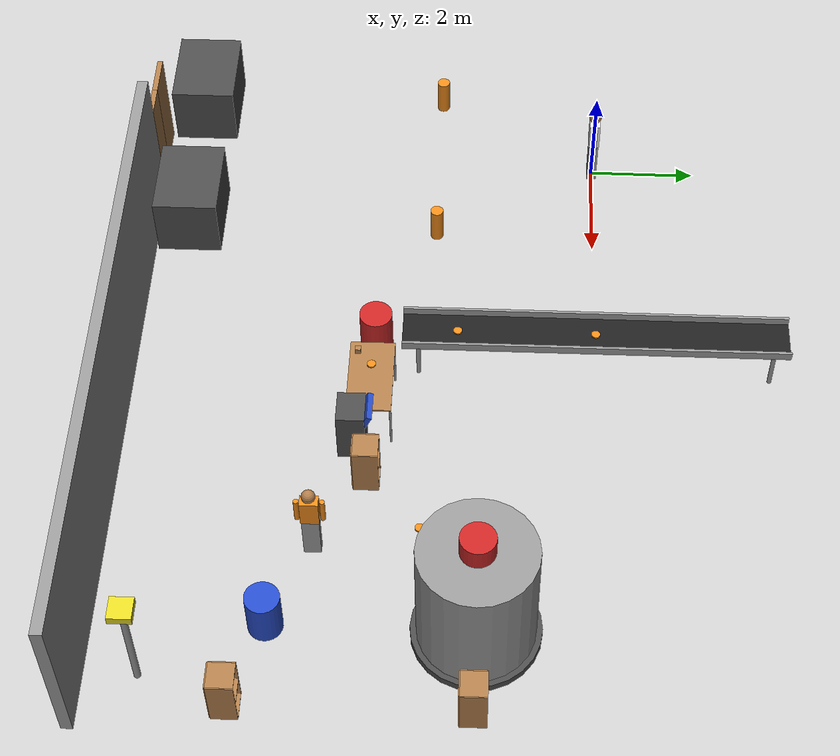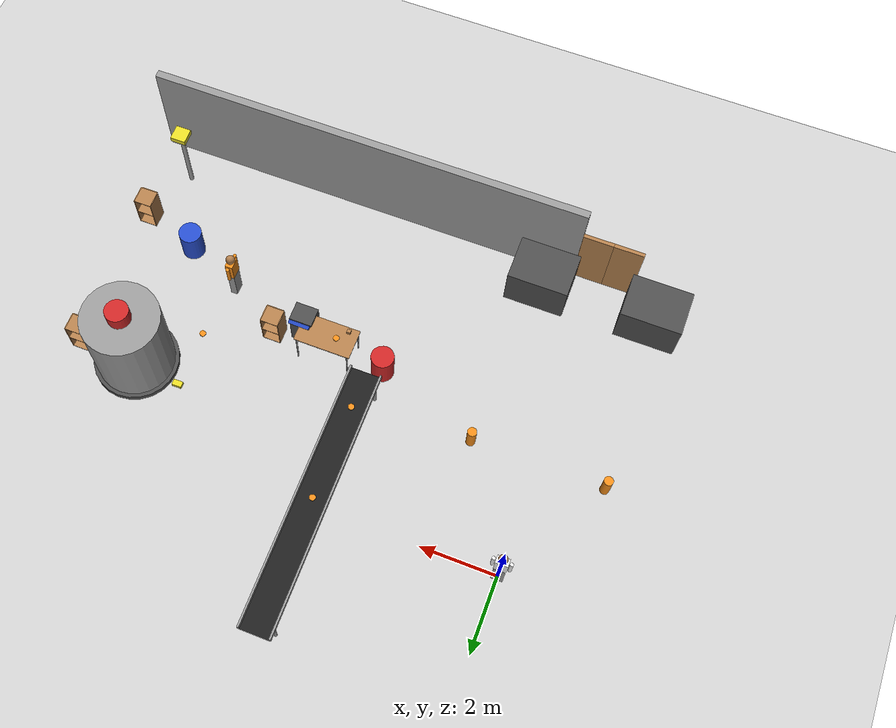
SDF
<sdf version="1.7">
 <world name="default">
  <model name="cabinet">
   <static>1</static>
   <link name="cabinet_bottom_plate">
    <inertial>
     <pose>0 0 -1 0 -0 0</pose>
     <inertia><ixx>2.05</ixx><ixy>0</ixy><ixz>0</ixz><iyy>2.05</iyy><iyz>0</iyz><izz>2.05</izz></inertia>
     <mass>25</mass>
    </inertial>
    <collision name="cabinet_bottom_plate_geom">
     <pose>0 0 0.01 0 -0 0</pose>
     <geometry><box><size>0.45 0.45 0.02</size></box></geometry>
    </collision>
    <visual name="cabinet_bottom_plate_geom_visual">
     <pose>0 0 0.01 0 -0 0</pose>
     <geometry><box><size>0.45 0.45 0.02</size></box></geometry>
     <material>
      <script><uri>file://media/materials/scripts/gazebo.material</uri><name>Gazebo/Wood</name></script>
     </material>
    </visual>
    <collision name="cabinet_bottom_plate_geom_cabinet_back_plate">
     <pose>0.235 0 0.51 0 -0 0</pose>
     <geometry><box><size>0.02 0.45 1.02</size></box></geometry>
    </collision>
    <visual name="cabinet_bottom_plate_geom_cabinet_back_plate_visual">
     <pose>0.235 0 0.51 0 -0 0</pose>
     <geometry><box><size>0.02 0.45 1.02</size></box></geometry>
     <material>
      <script><uri>file://media/materials/scripts/gazebo.material</uri><name>Gazebo/Wood</name></script>
     </material>
    </visual>
    <collision name="cabinet_bottom_plate_geom_cabinet_left_plate">
     <pose>0 0.235 0.51 0 -0 0</pose>
     <geometry><box><size>0.45 0.02 1.02</size></box></geometry>
    </collision>
    <visual name="cabinet_bottom_plate_geom_cabinet_left_plate_visual">
     <pose>0 0.235 0.51 0 -0 0</pose>
     <geometry><box><size>0.45 0.02 1.02</size></box></geometry>
     <material>
      <script><uri>file://media/materials/scripts/gazebo.material</uri><name>Gazebo/Wood</name></script>
     </material>
    </visual>
    <collision name="cabinet_bottom_plate_geom_cabinet_middle_plate">
     <pose>0 0 0.51 0 -0 0</pose>
     <geometry><box><size>0.45 0.45 0.02</size></box></geometry>
    </collision>
    <visual name="cabinet_bottom_plate_geom_cabinet_middle_plate_visual">
     <pose>0 0 0.51 0 -0 0</pose>
     <geometry><box><size>0.45 0.45 0.02</size></box></geometry>
     <material>
      <script><uri>file://media/materials/scripts/gazebo.material</uri><name>Gazebo/Wood</name></script>
     </material>
    </visual>
    <collision name="cabinet_bottom_plate_geom_cabinet_right_plate">
     <pose>0 -0.235 0.51 0 -0 0</pose>
     <geometry><box><size>0.45 0.02 1.02</size></box></geometry>
    </collision>
    <visual name="cabinet_bottom_plate_geom_cabinet_right_plate_visual">
     <pose>0 -0.235 0.51 0 -0 0</pose>
     <geometry><box><size>0.45 0.02 1.02</size></box></geometry>
     <material>
      <script><uri>file://media/materials/scripts/gazebo.material</uri><name>Gazebo/Wood</name></script>
     </material>
    </visual>
    <collision name="cabinet_bottom_plate_geom_cabinet_top_plate">
     <pose>0 0 1.01 0 -0 0</pose>
     <geometry><box><size>0.45 0.45 0.02</size></box></geometry>
    </collision>
    <visual name="cabinet_bottom_plate_geom_cabinet_top_plate_visual">
     <pose>0 0 1.01 0 -0 0</pose>
     <geometry><box><size>0.45 0.45 0.02</size></box></geometry>
     <material>
      <script><uri>file://media/materials/scripts/gazebo.material</uri><name>Gazebo/Wood</name></script>
     </material>
    </visual>
   </link>
   <pose>12 -6 0 0 -0 -1.5708</pose>
  </model>
  <model name="cabinet_0">
   <static>1</static>
   <link name="cabinet_bottom_plate">
    <inertial>
     <pose>0 0 -1 0 -0 0</pose>
     <inertia><ixx>2.05</ixx><ixy>0</ixy><ixz>0</ixz><iyy>2.05</iyy><iyz>0</iyz><izz>2.05</izz></inertia>
     <mass>25</mass>
    </inertial>
    <collision name="cabinet_bottom_plate_geom">
     <pose>0 0 0.01 0 -0 0</pose>
     <geometry><box><size>0.45 0.45 0.02</size></box></geometry>
    </collision>
    <visual name="cabinet_bottom_plate_geom_visual">
     <pose>0 0 0.01 0 -0 0</pose>
     <geometry><box><size>0.45 0.45 0.02</size></box></geometry>
     <material>
      <script><uri>file://media/materials/scripts/gazebo.material</uri><name>Gazebo/Wood</name></script>
     </material>
    </visual>
    <collision name="cabinet_bottom_plate_geom_cabinet_back_plate">
     <pose>0.235 0 0.51 0 -0 0</pose>
     <geometry><box><size>0.02 0.45 1.02</size></box></geometry>
    </collision>
    <visual name="cabinet_bottom_plate_geom_cabinet_back_plate_visual">
     <pose>0.235 0 0.51 0 -0 0</pose>
     <geometry><box><size>0.02 0.45 1.02</size></box></geometry>
     <material>
      <script><uri>file://media/materials/scripts/gazebo.material</uri><name>Gazebo/Wood</name></script>
     </material>
    </visual>
    <collision name="cabinet_bottom_plate_geom_cabinet_left_plate">
     <pose>0 0.235 0.51 0 -0 0</pose>
     <geometry><box><size>0.45 0.02 1.02</size></box></geometry>
    </collision>
    <visual name="cabinet_bottom_plate_geom_cabinet_left_plate_visual">
     <pose>0 0.235 0.51 0 -0 0</pose>
     <geometry><box><size>0.45 0.02 1.02</size></box></geometry>
     <material>
      <script><uri>file://media/materials/scripts/gazebo.material</uri><name>Gazebo/Wood</name></script>
     </material>
    </visual>
    <collision name="cabinet_bottom_plate_geom_cabinet_middle_plate">
     <pose>0 0 0.51 0 -0 0</pose>
     <geometry><box><size>0.45 0.45 0.02</size></box></geometry>
    </collision>
    <visual name="cabinet_bottom_plate_geom_cabinet_middle_plate_visual">
     <pose>0 0 0.51 0 -0 0</pose>
     <geometry><box><size>0.45 0.45 0.02</size></box></geometry>
     <material>
      <script><uri>file://media/materials/scripts/gazebo.material</uri><name>Gazebo/Wood</name></script>
     </material>
    </visual>
    <collision name="cabinet_bottom_plate_geom_cabinet_right_plate">
     <pose>0 -0.235 0.51 0 -0 0</pose>
     <geometry><box><size>0.45 0.02 1.02</size></box></geometry>
    </collision>
    <visual name="cabinet_bottom_plate_geom_cabinet_right_plate_visual">
     <pose>0 -0.235 0.51 0 -0 0</pose>
     <geometry><box><size>0.45 0.02 1.02</size></box></geometry>
     <material>
      <script><uri>file://media/materials/scripts/gazebo.material</uri><name>Gazebo/Wood</name></script>
     </material>
    </visual>
    <collision name="cabinet_bottom_plate_geom_cabinet_top_plate">
     <pose>0 0 1.01 0 -0 0</pose>
     <geometry><box><size>0.45 0.45 0.02</size></box></geometry>
    </collision>
    <visual name="cabinet_bottom_plate_geom_cabinet_top_plate_visual">
     <pose>0 0 1.01 0 -0 0</pose>
     <geometry><box><size>0.45 0.45 0.02</size></box></geometry>
     <material>
      <script><uri>file://media/materials/scripts/gazebo.material</uri><name>Gazebo/Wood</name></script>
     </material>
    </visual>
   </link>
   <pose>12 -2 0 0 -0 -1.5708</pose>
  </model>
  <model name="ground_plane">
   <static>1</static>
   <link name="link">
    <collision name="collision">
     <geometry><plane><normal>0 0 1</normal><size>100 100</size></plane></geometry>
     <surface><friction><ode><mu>100</mu><mu2>50</mu2></ode></friction></surface>
    </collision>
    <visual name="visual">
     <cast_shadows>0</cast_shadows>
     <geometry><plane><normal>0 0 1</normal><size>100 100</size></plane></geometry>
     <material>
      <script><uri>file://media/materials/scripts/gazebo.material</uri><name>Gazebo/Grey</name></script>
     </material>
    </visual>
   </link>
  </model>
  <model name="table">
   <static>1</static>
   <link name="link">
    <collision name="surface">
     <pose>0 0 1 0 -0 0</pose>
     <geometry><box><size>1.5 0.8 0.03</size></box></geometry>
     <surface><friction><ode><mu>0.6</mu><mu2>0.6</mu2></ode></friction></surface>
    </collision>
    <visual name="visual1">
     <pose>0 0 1 0 -0 0</pose>
     <geometry><box><size>1.5 0.8 0.03</size></box></geometry>
     <material>
      <script><uri>file://media/materials/scripts/gazebo.material</uri><name>Gazebo/Wood</name></script>
     </material>
    </visual>
    <collision name="front_left_leg">
     <pose>0.68 0.38 0.5 0 -0 0</pose>
     <geometry><cylinder><radius>0.02</radius><length>1</length></cylinder></geometry>
    </collision>
    <visual name="front_left_leg_visual2">
     <pose>0.68 0.38 0.5 0 -0 0</pose>
     <geometry><cylinder><radius>0.02</radius><length>1</length></cylinder></geometry>
     <material>
      <script><uri>file://media/materials/scripts/gazebo.material</uri><name>Gazebo/Grey</name></script>
     </material>
    </visual>
    <collision name="front_right_leg">
     <pose>0.68 -0.38 0.5 0 -0 0</pose>
     <geometry><cylinder><radius>0.02</radius><length>1</length></cylinder></geometry>
    </collision>
    <visual name="front_right_leg_visual2">
     <pose>0.68 -0.38 0.5 0 -0 0</pose>
     <geometry><cylinder><radius>0.02</radius><length>1</length></cylinder></geometry>
     <material>
      <script><uri>file://media/materials/scripts/gazebo.material</uri><name>Gazebo/Grey</name></script>
     </material>
    </visual>
    <collision name="back_right_leg">
     <pose>-0.68 -0.38 0.5 0 -0 0</pose>
     <geometry><cylinder><radius>0.02</radius><length>1</length></cylinder></geometry>
    </collision>
    <visual name="back_right_leg_visual2">
     <pose>-0.68 -0.38 0.5 0 -0 0</pose>
     <geometry><cylinder><radius>0.02</radius><length>1</length></cylinder></geometry>
     <material>
      <script><uri>file://media/materials/scripts/gazebo.material</uri><name>Gazebo/Grey</name></script>
     </material>
    </visual>
    <collision name="back_left_leg">
     <pose>-0.68 0.38 0.5 0 -0 0</pose>
     <geometry><cylinder><radius>0.02</radius><length>1</length></cylinder></geometry>
    </collision>
    <visual name="back_left_leg_visual2">
     <pose>-0.68 0.38 0.5 0 -0 0</pose>
     <geometry><cylinder><radius>0.02</radius><length>1</length></cylinder></geometry>
     <material>
      <script><uri>file://media/materials/scripts/gazebo.material</uri><name>Gazebo/Grey</name></script>
     </material>
    </visual>
   </link>
   <pose>6 -4 0 0 -0 0</pose>
  </model>
  <model name="door_08x2m">
   <link name="link">
    <visual name="visual">
     <geometry><box><size>0.1 0.8 2</size></box></geometry>
     <material>
      <script><uri>file://media/materials/scripts/gazebo.material</uri><name>Gazebo/Wood</name></script>
     </material>
    </visual>
   </link>
   <static>1</static>
   <pose>-0.4 -8.5 1 0 -0 1.5708</pose>
  </model>
  <model name="door_08x2m_clone">
   <link name="link">
    <visual name="visual">
     <geometry><box><size>0.1 0.8 2</size></box></geometry>
     <material>
      <script><uri>file://media/materials/scripts/gazebo.material</uri><name>Gazebo/Wood</name></script>
     </material>
    </visual>
   </link>
   <static>1</static>
   <pose>0.4 -8.5 1 0 -0 1.5708</pose>
  </model>
  <model name="wall_south_east">
   <static>1</static>
   <link name="link">
    <collision name="box_collision"><geometry><box><size>11.7 0.2 3</size></box></geometry></collision>
    <visual name="box_visual">
     <geometry><box><size>11.7 0.2 3</size></box></geometry>
     <material>
      <script><uri>file://media/materials/scripts/gazebo.material</uri><name>Gazebo/Grey</name></script>
     </material>
    </visual>
   </link>
   <pose>6.65 -8.5 1.5 0 -0 0</pose>
  </model>
  <model name="wood_cube_ws1">
   <link name="link">
    <pose>0 0 0.05 0 -0 0</pose>
    <inertial>
     <mass>0.5167</mass>
     <inertia>
      <ixx>0.000861167</ixx>
      <ixy>0</ixy>
      <ixz>0</ixz>
      <iyy>0.000861167</iyy>
      <iyz>0</iyz>
      <izz>0.000861167</izz>
     </inertia>
    </inertial>
    <collision name="collision">
     <geometry><box><size>0.1 0.1 0.1</size></box></geometry>
     <surface>
      <contact>
       <poissons_ratio>0.347</poissons_ratio>
       <elastic_modulus>8.8e+09</elastic_modulus>
       <ode><kp>100000</kp><kd>100</kd><max_vel>100</max_vel><min_depth>0.001</min_depth></ode>
      </contact>
      <friction>
       <torsional>
        <coefficient>1</coefficient>
        <use_patch_radius>0</use_patch_radius>
        <surface_radius>0.01</surface_radius>
       </torsional>
      </friction>
     </surface>
    </collision>
    <visual name="visual">
     <geometry><box><size>0.1 0.1 0.1</size></box></geometry>
     <material>
      <script><uri>file://media/materials/scripts/gazebo.material</uri><name>Gazebo/Wood</name></script>
     </material>
    </visual>
   </link>
   <pose>5.5 -4.25 1.065 0 -0 0</pose>
  </model>
  <model name="cabinet_ws1">
   <static>1</static>
   <link name="cabinet_bottom_plate">
    <inertial>
     <pose>0 0 -1 0 -0 0</pose>
     <inertia><ixx>2.05</ixx><ixy>0</ixy><ixz>0</ixz><iyy>2.05</iyy><iyz>0</iyz><izz>2.05</izz></inertia>
     <mass>25</mass>
    </inertial>
    <collision name="cabinet_bottom_plate_geom">
     <pose>0 0 0.01 0 -0 0</pose>
     <geometry><box><size>0.45 0.45 0.02</size></box></geometry>
    </collision>
    <visual name="cabinet_bottom_plate_geom_visual">
     <pose>0 0 0.01 0 -0 0</pose>
     <geometry><box><size>0.45 0.45 0.02</size></box></geometry>
     <material>
      <script><uri>file://media/materials/scripts/gazebo.material</uri><name>Gazebo/Wood</name></script>
     </material>
    </visual>
    <collision name="cabinet_bottom_plate_geom_cabinet_back_plate">
     <pose>0.235 0 0.51 0 -0 0</pose>
     <geometry><box><size>0.02 0.45 1.02</size></box></geometry>
    </collision>
    <visual name="cabinet_bottom_plate_geom_cabinet_back_plate_visual">
     <pose>0.235 0 0.51 0 -0 0</pose>
     <geometry><box><size>0.02 0.45 1.02</size></box></geometry>
     <material>
      <script><uri>file://media/materials/scripts/gazebo.material</uri><name>Gazebo/Wood</name></script>
     </material>
    </visual>
    <collision name="cabinet_bottom_plate_geom_cabinet_left_plate">
     <pose>0 0.235 0.51 0 -0 0</pose>
     <geometry><box><size>0.45 0.02 1.02</size></box></geometry>
    </collision>
    <visual name="cabinet_bottom_plate_geom_cabinet_left_plate_visual">
     <pose>0 0.235 0.51 0 -0 0</pose>
     <geometry><box><size>0.45 0.02 1.02</size></box></geometry>
     <material>
      <script><uri>file://media/materials/scripts/gazebo.material</uri><name>Gazebo/Wood</name></script>
     </material>
    </visual>
    <collision name="cabinet_bottom_plate_geom_cabinet_middle_plate">
     <pose>0 0 0.51 0 -0 0</pose>
     <geometry><box><size>0.45 0.45 0.02</size></box></geometry>
    </collision>
    <visual name="cabinet_bottom_plate_geom_cabinet_middle_plate_visual">
     <pose>0 0 0.51 0 -0 0</pose>
     <geometry><box><size>0.45 0.45 0.02</size></box></geometry>
     <material>
      <script><uri>file://media/materials/scripts/gazebo.material</uri><name>Gazebo/Wood</name></script>
     </material>
    </visual>
    <collision name="cabinet_bottom_plate_geom_cabinet_right_plate">
     <pose>0 -0.235 0.51 0 -0 0</pose>
     <geometry><box><size>0.45 0.02 1.02</size></box></geometry>
    </collision>
    <visual name="cabinet_bottom_plate_geom_cabinet_right_plate_visual">
     <pose>0 -0.235 0.51 0 -0 0</pose>
     <geometry><box><size>0.45 0.02 1.02</size></box></geometry>
     <material>
      <script><uri>file://media/materials/scripts/gazebo.material</uri><name>Gazebo/Wood</name></script>
     </material>
    </visual>
    <collision name="cabinet_bottom_plate_geom_cabinet_top_plate">
     <pose>0 0 1.01 0 -0 0</pose>
     <geometry><box><size>0.45 0.45 0.02</size></box></geometry>
    </collision>
    <visual name="cabinet_bottom_plate_geom_cabinet_top_plate_visual">
     <pose>0 0 1.01 0 -0 0</pose>
     <geometry><box><size>0.45 0.45 0.02</size></box></geometry>
     <material>
      <script><uri>file://media/materials/scripts/gazebo.material</uri><name>Gazebo/Wood</name></script>
     </material>
    </visual>
   </link>
   <pose>7.5 -4 0 0 -0 -1.5708</pose>
  </model>
  <model name="barrel_4">
   <static>1</static>
   <link name="link">
    <collision name="cyl_collision">
     <geometry><cylinder><radius>0.3</radius><length>0.9</length></cylinder></geometry>
    </collision>
    <visual name="cyl_visual">
     <geometry><cylinder><radius>0.3</radius><length>0.9</length></cylinder></geometry>
     <material>
      <script><uri>file://media/materials/scripts/gazebo.material</uri><name>Gazebo/Red</name></script>
     </material>
    </visual>
   </link>
   <pose>4.5 -4 0.45 0 -0 0</pose>
  </model>
  <model name="barrel_6">
   <static>1</static>
   <link name="link">
    <collision name="cyl_collision">
     <geometry><cylinder><radius>0.3</radius><length>0.9</length></cylinder></geometry>
    </collision>
    <visual name="cyl_visual">
     <geometry><cylinder><radius>0.3</radius><length>0.9</length></cylinder></geometry>
     <material>
      <script><uri>file://media/materials/scripts/gazebo.material</uri><name>Gazebo/Blue</name></script>
     </material>
    </visual>
   </link>
   <pose>10.5 -5.5 0.45 0 -0 0</pose>
  </model>
  <model name="pylon_0">
   <static>1</static>
   <link name="link">
    <collision name="cyl_collision">
     <geometry><cylinder><radius>0.12</radius><length>0.7</length></cylinder></geometry>
    </collision>
    <visual name="cyl_visual">
     <geometry><cylinder><radius>0.12</radius><length>0.7</length></cylinder></geometry>
     <material>
      <script><uri>file://media/materials/scripts/gazebo.material</uri><name>Gazebo/Orange</name></script>
     </material>
    </visual>
   </link>
   <pose>-1.75 -8 0.35 0 -0 0</pose>
  </model>
  <model name="pylon_1">
   <static>1</static>
   <link name="link">
    <collision name="cyl_collision">
     <geometry><cylinder><radius>0.12</radius><length>0.7</length></cylinder></geometry>
    </collision>
    <visual name="cyl_visual">
     <geometry><cylinder><radius>0.12</radius><length>0.7</length></cylinder></geometry>
     <material>
      <script><uri>file://media/materials/scripts/gazebo.material</uri><name>Gazebo/Orange</name></script>
     </material>
    </visual>
   </link>
   <pose>-1.75 -3 0.35 0 -0 0</pose>
  </model>
  <model name="pylon_3">
   <static>1</static>
   <link name="link">
    <collision name="cyl_collision">
     <geometry><cylinder><radius>0.12</radius><length>0.7</length></cylinder></geometry>
    </collision>
    <visual name="cyl_visual">
     <geometry><cylinder><radius>0.12</radius><length>0.7</length></cylinder></geometry>
     <material>
      <script><uri>file://media/materials/scripts/gazebo.material</uri><name>Gazebo/Orange</name></script>
     </material>
    </visual>
   </link>
   <pose>1.75 -8 0.35 0 -0 0</pose>
  </model>
  <model name="pylon_4">
   <static>1</static>
   <link name="link">
    <collision name="cyl_collision">
     <geometry><cylinder><radius>0.12</radius><length>0.7</length></cylinder></geometry>
    </collision>
    <visual name="cyl_visual">
     <geometry><cylinder><radius>0.12</radius><length>0.7</length></cylinder></geometry>
     <material>
      <script><uri>file://media/materials/scripts/gazebo.material</uri><name>Gazebo/Orange</name></script>
     </material>
    </visual>
   </link>
   <pose>1.75 -3 0.35 0 -0 0</pose>
  </model>
  <model name="dumpster_0">
   <static>1</static>
   <link name="link">
    <collision name="box_collision"><geometry><box><size>1.6 1.2 1.2</size></box></geometry></collision>
    <visual name="box_visual">
     <geometry><box><size>1.6 1.2 1.2</size></box></geometry>
     <material>
      <script><uri>file://media/materials/scripts/gazebo.material</uri><name>Gazebo/DarkGrey</name></script>
     </material>
    </visual>
   </link>
   <pose>-1.5 -7.75 0.6 0 -0 0</pose>
  </model>
  <model name="dumpster_1">
   <static>1</static>
   <link name="link">
    <collision name="box_collision"><geometry><box><size>1.6 1.2 1.2</size></box></geometry></collision>
    <visual name="box_visual">
     <geometry><box><size>1.6 1.2 1.2</size></box></geometry>
     <material>
      <script><uri>file://media/materials/scripts/gazebo.material</uri><name>Gazebo/DarkGrey</name></script>
     </material>
    </visual>
   </link>
   <pose>1.5 -7.75 0.6 0 -0 0</pose>
  </model>
  <model name="lamp_2">
   <static>1</static>
   <link name="link">
    <collision name="pole_collision">
     <geometry><cylinder><radius>0.06</radius><length>2</length></cylinder></geometry>
     <pose>0 0 1 0 -0 0</pose>
    </collision>
    <visual name="pole_visual">
     <geometry><cylinder><radius>0.06</radius><length>2</length></cylinder></geometry>
     <pose>0 0 1 0 -0 0</pose>
     <material>
      <script><uri>file://media/materials/scripts/gazebo.material</uri><name>Gazebo/Grey</name></script>
     </material>
    </visual>
    <collision name="head_collision">
     <geometry><box><size>0.4 0.4 0.15</size></box></geometry>
     <pose>0 0 2.075 0 -0 0</pose>
    </collision>
    <visual name="head_visual">
     <geometry><box><size>0.4 0.4 0.15</size></box></geometry>
     <pose>0 0 2.075 0 -0 0</pose>
     <material>
      <script><uri>file://media/materials/scripts/gazebo.material</uri><name>Gazebo/Yellow</name></script>
     </material>
    </visual>
   </link>
   <pose>11.5 -7.5 0 0 -0 0</pose>
  </model>
  <model name="console_ws1">
   <static>1</static>
   <link name="link">
    <collision name="body_collision">
     <geometry><box><size>0.6 0.5 1.1</size></box></geometry>
     <pose>0 0 0.55 0 -0 0</pose>
    </collision>
    <visual name="body_visual">
     <geometry><box><size>0.6 0.5 1.1</size></box></geometry>
     <pose>0 0 0.55 0 -0 0</pose>
     <material>
      <script><uri>file://media/materials/scripts/gazebo.material</uri><name>Gazebo/DarkGrey</name></script>
     </material>
    </visual>
    <collision name="panel_collision">
     <geometry><box><size>0.55 0.1 0.3</size></box></geometry>
     <pose>0 0.28 1 -0.4 -0 0</pose>
    </collision>
    <visual name="panel_visual">
     <geometry><box><size>0.55 0.1 0.3</size></box></geometry>
     <pose>0 0.28 1 -0.4 -0 0</pose>
     <material>
      <script><uri>file://media/materials/scripts/gazebo.material</uri><name>Gazebo/Blue</name></script>
     </material>
    </visual>
   </link>
   <pose>6.75 -4.3 0 0 -0 0</pose>
  </model>
  <model name="reactor_0">
   <static>1</static>
   <link name="link">
    <collision name="tank_collision">
     <geometry><cylinder><radius>1</radius><length>2.5</length></cylinder></geometry>
     <pose>0 0 1.25 0 -0 0</pose>
    </collision>
    <visual name="tank_visual">
     <geometry><cylinder><radius>1</radius><length>2.5</length></cylinder></geometry>
     <pose>0 0 1.25 0 -0 0</pose>
     <material>
      <script><uri>file://media/materials/scripts/gazebo.material</uri><name>Gazebo/Grey</name></script>
     </material>
    </visual>
    <collision name="cap_collision">
     <geometry><cylinder><radius>0.3</radius><length>0.4</length></cylinder></geometry>
     <pose>0 0 2.7 0 -0 0</pose>
    </collision>
    <visual name="cap_visual">
     <geometry><cylinder><radius>0.3</radius><length>0.4</length></cylinder></geometry>
     <pose>0 0 2.7 0 -0 0</pose>
     <material>
      <script><uri>file://media/materials/scripts/gazebo.material</uri><name>Gazebo/Red</name></script>
     </material>
    </visual>
    <collision name="base_collision">
     <geometry><cylinder><radius>1.1</radius><length>0.15</length></cylinder></geometry>
     <pose>0 0 0.075 0 -0 0</pose>
    </collision>
    <visual name="base_visual">
     <geometry><cylinder><radius>1.1</radius><length>0.15</length></cylinder></geometry>
     <pose>0 0 0.075 0 -0 0</pose>
     <material>
      <script><uri>file://media/materials/scripts/gazebo.material</uri><name>Gazebo/DarkGrey</name></script>
     </material>
    </visual>
   </link>
   <pose>10.5 -2 0 0 -0 0</pose>
  </model>
  <model name="part_disc_0">
   <static>1</static>
   <link name="link">
    <collision name="cyl_collision">
     <geometry><cylinder><radius>0.08</radius><length>0.03</length></cylinder></geometry>
    </collision>
    <visual name="cyl_visual">
     <geometry><cylinder><radius>0.08</radius><length>0.03</length></cylinder></geometry>
     <material>
      <script><uri>file://media/materials/scripts/gazebo.material</uri><name>Gazebo/Orange</name></script>
     </material>
    </visual>
   </link>
   <pose>9 -3 0.79 0 -0 0</pose>
  </model>
  <model name="part_block_0">
   <static>1</static>
   <link name="link">
    <collision name="box_collision"><geometry><box><size>0.25 0.15 0.1</size></box></geometry></collision>
    <visual name="box_visual">
     <geometry><box><size>0.25 0.15 0.1</size></box></geometry>
     <material>
      <script><uri>file://media/materials/scripts/gazebo.material</uri><name>Gazebo/Yellow</name></script>
     </material>
    </visual>
   </link>
   <pose>9 -1.5 0.83 0 -0 0</pose>
  </model>
  <model name="part_disc_ws1">
   <static>1</static>
   <link name="link">
    <collision name="cyl_collision">
     <geometry><cylinder><radius>0.08</radius><length>0.03</length></cylinder></geometry>
    </collision>
    <visual name="cyl_visual">
     <geometry><cylinder><radius>0.08</radius><length>0.03</length></cylinder></geometry>
     <material>
      <script><uri>file://media/materials/scripts/gazebo.material</uri><name>Gazebo/Orange</name></script>
     </material>
    </visual>
   </link>
   <pose>5.75 -4 1.03 0 -0 0</pose>
  </model>
  <model name="conveyor_belt_2">
   <static>1</static>
   <link name="frame">
    <collision name="bed_collision">
     <geometry><box><size>7 0.8 0.05</size></box></geometry>
     <pose>0 0 0.75 0 -0 0</pose>
    </collision>
    <visual name="bed_visual">
     <geometry><box><size>7 0.8 0.05</size></box></geometry>
     <pose>0 0 0.75 0 -0 0</pose>
     <material>
      <script><uri>file://media/materials/scripts/gazebo.material</uri><name>Gazebo/Black</name></script>
     </material>
    </visual>
    <collision name="rail_pos_collision">
     <geometry><box><size>7 0.05 0.15</size></box></geometry>
     <pose>0 0.4 0.85 0 -0 0</pose>
    </collision>
    <visual name="rail_pos_visual">
     <geometry><box><size>7 0.05 0.15</size></box></geometry>
     <pose>0 0.4 0.85 0 -0 0</pose>
     <material>
      <script><uri>file://media/materials/scripts/gazebo.material</uri><name>Gazebo/Grey</name></script>
     </material>
    </visual>
    <collision name="rail_neg_collision">
     <geometry><box><size>7 0.05 0.15</size></box></geometry>
     <pose>0 -0.4 0.85 0 -0 0</pose>
    </collision>
    <visual name="rail_neg_visual">
     <geometry><box><size>7 0.05 0.15</size></box></geometry>
     <pose>0 -0.4 0.85 0 -0 0</pose>
     <material>
      <script><uri>file://media/materials/scripts/gazebo.material</uri><name>Gazebo/Grey</name></script>
     </material>
    </visual>
    <collision name="leg0_collision">
     <geometry><cylinder><radius>0.04</radius><length>0.75</length></cylinder></geometry>
     <pose>3.2 0.35 0.375 0 -0 0</pose>
    </collision>
    <visual name="leg0_visual">
     <geometry><cylinder><radius>0.04</radius><length>0.75</length></cylinder></geometry>
     <pose>3.2 0.35 0.375 0 -0 0</pose>
     <material>
      <script><uri>file://media/materials/scripts/gazebo.material</uri><name>Gazebo/Grey</name></script>
     </material>
    </visual>
    <collision name="leg1_collision">
     <geometry><cylinder><radius>0.04</radius><length>0.75</length></cylinder></geometry>
     <pose>3.2 -0.35 0.375 0 -0 0</pose>
    </collision>
    <visual name="leg1_visual">
     <geometry><cylinder><radius>0.04</radius><length>0.75</length></cylinder></geometry>
     <pose>3.2 -0.35 0.375 0 -0 0</pose>
     <material>
      <script><uri>file://media/materials/scripts/gazebo.material</uri><name>Gazebo/Grey</name></script>
     </material>
    </visual>
    <collision name="leg2_collision">
     <geometry><cylinder><radius>0.04</radius><length>0.75</length></cylinder></geometry>
     <pose>-3.2 0.35 0.375 0 -0 0</pose>
    </collision>
    <visual name="leg2_visual">
     <geometry><cylinder><radius>0.04</radius><length>0.75</length></cylinder></geometry>
     <pose>-3.2 0.35 0.375 0 -0 0</pose>
     <material>
      <script><uri>file://media/materials/scripts/gazebo.material</uri><name>Gazebo/Grey</name></script>
     </material>
    </visual>
    <collision name="leg3_collision">
     <geometry><cylinder><radius>0.04</radius><length>0.75</length></cylinder></geometry>
     <pose>-3.2 -0.35 0.375 0 -0 0</pose>
    </collision>
    <visual name="leg3_visual">
     <geometry><cylinder><radius>0.04</radius><length>0.75</length></cylinder></geometry>
     <pose>-3.2 -0.35 0.375 0 -0 0</pose>
     <material>
      <script><uri>file://media/materials/scripts/gazebo.material</uri><name>Gazebo/Grey</name></script>
     </material>
    </visual>
   </link>
   <pose>4.75 0 0 0 -0 1.5708</pose>
  </model>
  <model name="part_disc2_0">
   <static>1</static>
   <link name="link">
    <collision name="cyl_collision">
     <geometry><cylinder><radius>0.08</radius><length>0.03</length></cylinder></geometry>
    </collision>
    <visual name="cyl_visual">
     <geometry><cylinder><radius>0.08</radius><length>0.03</length></cylinder></geometry>
     <material>
      <script><uri>file://media/materials/scripts/gazebo.material</uri><name>Gazebo/Orange</name></script>
     </material>
    </visual>
   </link>
   <pose>4.75 -2.5 0.79 0 -0 0</pose>
  </model>
  <model name="part_disc2_1">
   <static>1</static>
   <link name="link">
    <collision name="cyl_collision">
     <geometry><cylinder><radius>0.08</radius><length>0.03</length></cylinder></geometry>
    </collision>
    <visual name="cyl_visual">
     <geometry><cylinder><radius>0.08</radius><length>0.03</length></cylinder></geometry>
     <material>
      <script><uri>file://media/materials/scripts/gazebo.material</uri><name>Gazebo/Orange</name></script>
     </material>
    </visual>
   </link>
   <pose>4.75 0 0.79 0 -0 0</pose>
  </model>
  <model name="worker_conveyor_1">
   <static>1</static>
   <link name="link">
    <collision name="legs_collision">
     <geometry><box><size>0.3 0.18 0.9</size></box></geometry>
     <pose>0 0 0.45 0 -0 0</pose>
    </collision>
    <visual name="legs_visual">
     <geometry><box><size>0.3 0.18 0.9</size></box></geometry>
     <pose>0 0 0.45 0 -0 0</pose>
     <material>
      <script><uri>file://media/materials/scripts/gazebo.material</uri><name>Gazebo/Grey</name></script>
     </material>
    </visual>
    <collision name="torso_collision">
     <geometry><box><size>0.32 0.2 0.55</size></box></geometry>
     <pose>0 0 1.175 0 -0 0</pose>
    </collision>
    <visual name="torso_visual">
     <geometry><box><size>0.32 0.2 0.55</size></box></geometry>
     <pose>0 0 1.175 0 -0 0</pose>
     <material>
      <script><uri>file://media/materials/scripts/gazebo.material</uri><name>Gazebo/Orange</name></script>
     </material>
    </visual>
    <collision name="arm_l_collision">
     <geometry><cylinder><radius>0.045</radius><length>0.5</length></cylinder></geometry>
     <pose>0.22 0 1.175 0 -0 0</pose>
    </collision>
    <visual name="arm_l_visual">
     <geometry><cylinder><radius>0.045</radius><length>0.5</length></cylinder></geometry>
     <pose>0.22 0 1.175 0 -0 0</pose>
     <material>
      <script><uri>file://media/materials/scripts/gazebo.material</uri><name>Gazebo/Orange</name></script>
     </material>
    </visual>
    <collision name="arm_r_collision">
     <geometry><cylinder><radius>0.045</radius><length>0.5</length></cylinder></geometry>
     <pose>-0.22 0 1.175 0 -0 0</pose>
    </collision>
    <visual name="arm_r_visual">
     <geometry><cylinder><radius>0.045</radius><length>0.5</length></cylinder></geometry>
     <pose>-0.22 0 1.175 0 -0 0</pose>
     <material>
      <script><uri>file://media/materials/scripts/gazebo.material</uri><name>Gazebo/Orange</name></script>
     </material>
    </visual>
    <collision name="head_collision">
     <geometry><sphere><radius>0.12</radius></sphere></geometry>
     <pose>0 0 1.57 0 -0 0</pose>
    </collision>
    <visual name="head_visual">
     <geometry><sphere><radius>0.12</radius></sphere></geometry>
     <pose>0 0 1.57 0 -0 0</pose>
     <material>
      <script><uri>file://media/materials/scripts/gazebo.material</uri><name>Gazebo/Wood</name></script>
     </material>
    </visual>
   </link>
   <pose>9.8 -2 0 0 -0 -1.5708</pose>
  </model>
  <model name="manager">
   <static>1</static>
   <link name="link">
    <collision name="legs_collision">
     <geometry><box><size>0.3 0.18 0.9</size></box></geometry>
     <pose>0 0 0.45 0 -0 0</pose>
    </collision>
    <visual name="legs_visual">
     <geometry><box><size>0.3 0.18 0.9</size></box></geometry>
     <pose>0 0 0.45 0 -0 0</pose>
     <material>
      <script><uri>file://media/materials/scripts/gazebo.material</uri><name>Gazebo/Grey</name></script>
     </material>
    </visual>
    <collision name="torso_collision">
     <geometry><box><size>0.32 0.2 0.55</size></box></geometry>
     <pose>0 0 1.175 0 -0 0</pose>
    </collision>
    <visual name="torso_visual">
     <geometry><box><size>0.32 0.2 0.55</size></box></geometry>
     <pose>0 0 1.175 0 -0 0</pose>
     <material>
      <script><uri>file://media/materials/scripts/gazebo.material</uri><name>Gazebo/White</name></script>
     </material>
    </visual>
    <collision name="arm_l_collision">
     <geometry><cylinder><radius>0.045</radius><length>0.5</length></cylinder></geometry>
     <pose>0.22 0 1.175 0 -0 0</pose>
    </collision>
    <visual name="arm_l_visual">
     <geometry><cylinder><radius>0.045</radius><length>0.5</length></cylinder></geometry>
     <pose>0.22 0 1.175 0 -0 0</pose>
     <material>
      <script><uri>file://media/materials/scripts/gazebo.material</uri><name>Gazebo/White</name></script>
     </material>
    </visual>
    <collision name="arm_r_collision">
     <geometry><cylinder><radius>0.045</radius><length>0.5</length></cylinder></geometry>
     <pose>-0.22 0 1.175 0 -0 0</pose>
    </collision>
    <visual name="arm_r_visual">
     <geometry><cylinder><radius>0.045</radius><length>0.5</length></cylinder></geometry>
     <pose>-0.22 0 1.175 0 -0 0</pose>
     <material>
      <script><uri>file://media/materials/scripts/gazebo.material</uri><name>Gazebo/White</name></script>
     </material>
    </visual>
    <collision name="head_collision">
     <geometry><sphere><radius>0.12</radius></sphere></geometry>
     <pose>0 0 1.57 0 -0 0</pose>
    </collision>
    <visual name="head_visual">
     <geometry><sphere><radius>0.12</radius></sphere></geometry>
     <pose>0 0 1.57 0 -0 0</pose>
     <material>
      <script><uri>file://media/materials/scripts/gazebo.material</uri><name>Gazebo/Wood</name></script>
     </material>
    </visual>
   </link>
  </model>
  <model name="worker_conveyor_2_clone_clone_2">
   <static>1</static>
   <link name="link">
    <collision name="legs_collision">
     <geometry><box><size>0.3 0.18 0.9</size></box></geometry>
     <pose>0 0 0.45 0 -0 0</pose>
    </collision>
    <visual name="legs_visual">
     <geometry><box><size>0.3 0.18 0.9</size></box></geometry>
     <pose>0 0 0.45 0 -0 0</pose>
     <material>
      <script><uri>file://media/materials/scripts/gazebo.material</uri><name>Gazebo/Grey</name></script>
     </material>
    </visual>
    <collision name="torso_collision">
     <geometry><box><size>0.32 0.2 0.55</size></box></geometry>
     <pose>0 0 1.175 0 -0 0</pose>
    </collision>
    <visual name="torso_visual">
     <geometry><box><size>0.32 0.2 0.55</size></box></geometry>
     <pose>0 0 1.175 0 -0 0</pose>
     <material>
      <script><uri>file://media/materials/scripts/gazebo.material</uri><name>Gazebo/Orange</name></script>
     </material>
    </visual>
    <collision name="arm_l_collision">
     <geometry><cylinder><radius>0.045</radius><length>0.5</length></cylinder></geometry>
     <pose>0.22 0 1.175 0 -0 0</pose>
    </collision>
    <visual name="arm_l_visual">
     <geometry><cylinder><radius>0.045</radius><length>0.5</length></cylinder></geometry>
     <pose>0.22 0 1.175 0 -0 0</pose>
     <material>
      <script><uri>file://media/materials/scripts/gazebo.material</uri><name>Gazebo/Orange</name></script>
     </material>
    </visual>
    <collision name="arm_r_collision">
     <geometry><cylinder><radius>0.045</radius><length>0.5</length></cylinder></geometry>
     <pose>-0.22 0 1.175 0 -0 0</pose>
    </collision>
    <visual name="arm_r_visual">
     <geometry><cylinder><radius>0.045</radius><length>0.5</length></cylinder></geometry>
     <pose>-0.22 0 1.175 0 -0 0</pose>
     <material>
      <script><uri>file://media/materials/scripts/gazebo.material</uri><name>Gazebo/Orange</name></script>
     </material>
    </visual>
    <collision name="head_collision">
     <geometry><sphere><radius>0.12</radius></sphere></geometry>
     <pose>0 0 1.57 0 -0 0</pose>
    </collision>
    <visual name="head_visual">
     <geometry><sphere><radius>0.12</radius></sphere></geometry>
     <pose>0 0 1.57 0 -0 0</pose>
     <material>
      <script><uri>file://media/materials/scripts/gazebo.material</uri><name>Gazebo/Wood</name></script>
     </material>
    </visual>
   </link>
   <pose>8.96026 -4.82992 0 0 -0 1.5708</pose>
  </model>
 </world>
</sdf>
